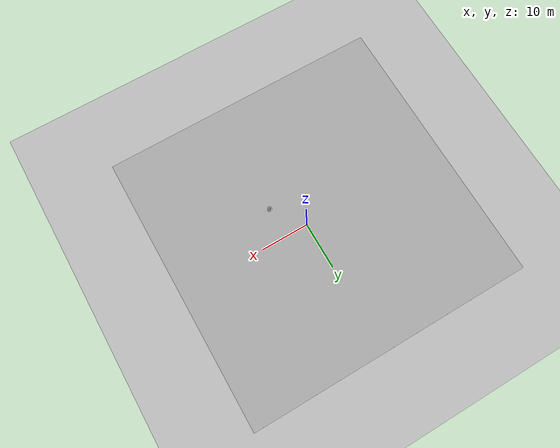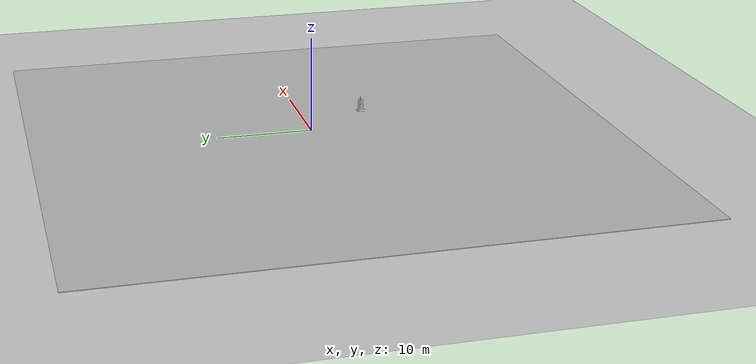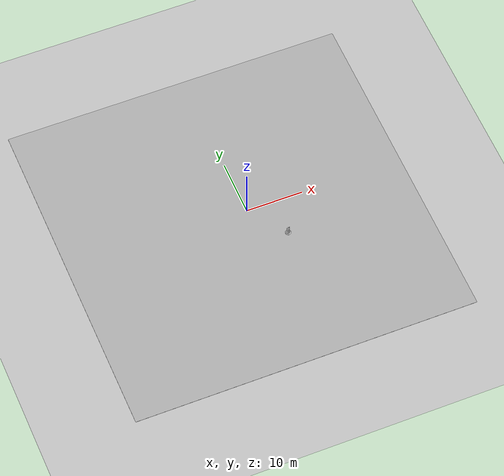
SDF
<sdf version="1.7">
 <world name="default">
  <light name="sun" type="directional">
   <pose>0 0 10 0 -0 0</pose>
   <diffuse>0.8 0.8 0.8 1</diffuse>
   <specular>0.2 0.2 0.2 1</specular>
   <attenuation>
    <range>1000</range>
    <constant>0.9</constant>
    <linear>0.01</linear>
    <quadratic>0.001</quadratic>
   </attenuation>
   <direction>-0.5 0.1 -0.9</direction>
   <spot><inner_angle>0</inner_angle><outer_angle>0</outer_angle><falloff>0</falloff></spot>
  </light>
  <model name="ground_plane">
   <static>1</static>
   <link name="link">
    <collision name="collision">
     <geometry><plane><normal>0 0 1</normal><size>100 100</size></plane></geometry>
     <surface>
      <contact><collide_bitmask>65535</collide_bitmask></contact>
      <friction><ode><mu>100</mu><mu2>50</mu2></ode></friction>
     </surface>
    </collision>
    <visual name="visual">
     <cast_shadows>0</cast_shadows>
     <geometry><plane><normal>0 0 1</normal><size>100 100</size></plane></geometry>
     <material>
      <script><uri>file://media/materials/scripts/gazebo.material</uri><name>Gazebo/Grey</name></script>
     </material>
    </visual>
   </link>
  </model>
  <gravity>0 0 -9.8</gravity>
  <magnetic_field>6e-06 2.3e-05 -4.2e-05</magnetic_field>
  <atmosphere type="adiabatic"/>
  <physics type="ode">
   <max_step_size>0.001</max_step_size>
   <real_time_factor>1</real_time_factor>
   <real_time_update_rate>1000</real_time_update_rate>
  </physics>
  <scene><ambient>0.4 0.4 0.4 1</ambient><background>0.7 0.7 0.7 1</background><shadows>1</shadows></scene>
  <spherical_coordinates>
   <surface_model>EARTH_WGS84</surface_model>
   <latitude_deg>0</latitude_deg>
   <longitude_deg>0</longitude_deg>
   <elevation>0</elevation>
   <heading_deg>0</heading_deg>
  </spherical_coordinates>
  <model name="igvc_track">
   <static>1</static>
   <link name="link">
    <collision name="collision"><geometry><box><size>60.0002 60.0002 0.049999</size></box></geometry></collision>
    <visual name="visual">
     <cast_shadows>0</cast_shadows>
     <geometry><box><size>60.0002 60.0002 0.049999</size></box></geometry>
     <material>
      <script>
       <uri>model://igvc_track10/materials/scripts</uri>
       <uri>model://igvc_track10/materials/textures</uri>
       <name>vrc/ground</name>
      </script>
     </material>
    </visual>
   </link>
   <link name="link2">
    <collision name="collision"><geometry><box><size>60.0002 60.0002 0.049999</size></box></geometry></collision>
    <visual name="visual">
     <cast_shadows>0</cast_shadows>
     <geometry><box><size>60.0002 60.0002 0.070001</size></box></geometry>
     <material>
      <script>
       <uri>model://igvc_track10/materials/scripts</uri>
       <uri>model://igvc_track10/materials/textures</uri>
       <name>vrc/track</name>
      </script>
     </material>
    </visual>
   </link>
   <pose>-1.95107 -1.01015 0 0 -0 0</pose>
  </model>
  <model name="Construction Barrel">
   <link name="link">
    <inertial>
     <pose>0 0 0.4 0 -0 0</pose>
     <mass>500</mass>
     <inertia><ixx>51.2096</ixx><iyy>51.2096</iyy><izz>25</izz><ixy>0</ixy><ixz>0</ixz><iyz>0</iyz></inertia>
    </inertial>
    <collision name="collision">
     <geometry><mesh><uri>model://construction_barrel/meshes/construction_barrel.dae</uri></mesh></geometry>
    </collision>
    <visual name="visual">
     <geometry><mesh><uri>model://construction_barrel/meshes/construction_barrel.dae</uri></mesh></geometry>
    </visual>
   </link>
   <pose>4.72617 -6.6315 0.032515 -1e-06 -4e-06 0.000101</pose>
  </model>
 </world>
</sdf>
